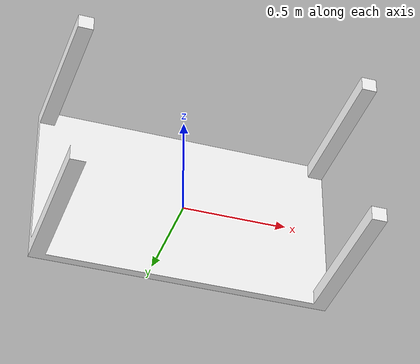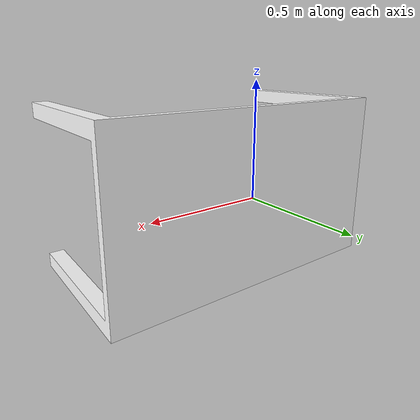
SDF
<?xml version="1.0"?>
<sdf version="1.8">
  <model name="erc_table">
    <static>true</static>
    <link name="table_base_link">

      <visual name="base_link_table_visual">
        <pose>0 0 0 0 0 0</pose>
        <geometry>
          <mesh>
            <uri>model:///erc_description/models/table/meshes/erc_base_table.STL</uri>

          </mesh>
        </geometry>
        <material>
          <ambient>1 1 1 1</ambient>
          <diffuse>1 1 1 1</diffuse>
        </material>
      </visual>

      <collision name="base_link_table_collision">
        <pose>0 0 0 0 0 0</pose>
        <geometry>
          <mesh>
            <uri>model:///erc_description/models/table/meshes/erc_base_table.STL</uri>

          </mesh>
        </geometry>
      </collision>
    </link>
  </model>
</sdf>
